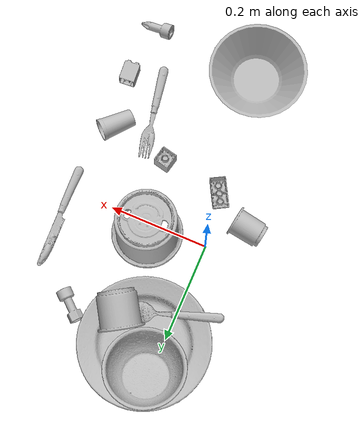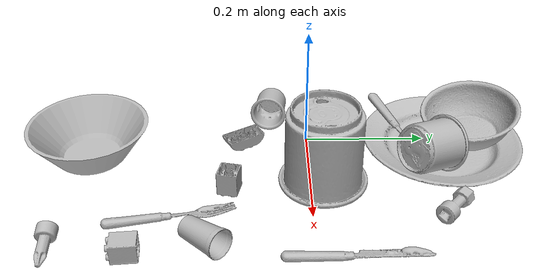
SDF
<sdf version="1.4">
  <world name="default">
    <light name="light1" type="point">
      <pose>0 0 1 0 0 0</pose>
      <diffuse>3 3 3 1</diffuse>
      <specular>3 3 3 1</specular>
    </light>
    <light name="light2" type="point">
      <pose>0 0.5 2 0 0 0</pose>
      <diffuse>1 1 1 1</diffuse>
      <specular>1 1 1 1</specular>
    </light>
    <light name="light3" type="point">
      <pose>0 0.5 2 0 0 0</pose>
      <diffuse>3 3 3 1</diffuse>
      <specular>3 3 3 1</specular>
    </light>
    <scene>
      <ambient>0.7 0.7 0.7</ambient>
    </scene>
    <model name="plate1">
      <link name="link_plate1">
        <collision name="default">
          <geometry>
            <mesh>
              <uri>model://plate/collision_meshes/collision.obj</uri>
              <scale>1.0 1.0 1.0</scale>
            </mesh>
          </geometry>
          <surface>
            <friction>
              <ode>
                <mu>0.5</mu>
                <mu2>0.5</mu2>
              </ode>
            </friction>
          <contact>
        <ode>
            <max_vel>0</max_vel>
            <min_depth>0.0001</min_depth>
            <kp>1e8</kp>
        </ode>
    </contact></surface>
        </collision>
        <visual name="default">
          <geometry>
            <mesh>
              <uri>model://plate/visual_meshes/visual.dae</uri>
              <scale>1.0 1.0 1.0</scale>
            </mesh>
          </geometry>
        </visual>
        <inertial>
          <mass>0.188415065407753</mass>
          <pose>-0.0006044681649655104 0.0002782578521873802 -0.0010561991948634386 0.0022187970116661695 -0.0032254679619122127 0.4526056514331616</pose>
          <inertia>
            <ixx>0.00088140933</ixx>
            <iyy>0.000872979</iyy>
            <izz>0.0017239053</izz>
            <ixy>0</ixy>
            <ixz>0</ixz>
            <iyz>0</iyz>
          </inertia>
        </inertial>
      </link>
      <pose>0.03316532075405121 0.22391515970230103 0.013733046129345894 -2.2163841717539391e-07 5.402633760236031e-07 2.596561843808585</pose>
    </model>
    <model name="cup1">
      <link name="link_cup1">
        <collision name="default">
          <geometry>
            <mesh>
              <uri>model://d_cups/collision_meshes/collision.obj</uri>
              <scale>2.0 2.0 2.0</scale>
            </mesh>
          </geometry>
          <surface>
            <friction>
              <ode>
                <mu>0.5</mu>
                <mu2>0.5</mu2>
              </ode>
            </friction>
          <contact>
        <ode>
            <max_vel>0</max_vel>
            <min_depth>0.0001</min_depth>
            <kp>1e8</kp>
        </ode>
    </contact></surface>
        </collision>
        <visual name="default">
          <geometry>
            <mesh>
              <uri>model://d_cups/visual_meshes/visual.dae</uri>
              <scale>2.0 2.0 2.0</scale>
            </mesh>
          </geometry>
        </visual>
        <inertial>
          <mass>0.39843064546585083</mass>
          <pose>0.0016136104241013527 0.0038234808016568422 -0.004533304367214441 0.24012134810188138 -0.24709791903716813 0.5942561701250738</pose>
          <inertia>
            <ixx>0.0013343208</ixx>
            <iyy>0.001330459</iyy>
            <izz>0.001207787</izz>
            <ixy>0</ixy>
            <ixz>0</ixz>
            <iyz>0</iyz>
          </inertia>
        </inertial>
      </link>
      <pose>0.11561080068349838 0.020509809255599976 0.06897805631160736 -3.1415925590456815 6.637596705661617e-08 0.6787491582233266</pose>
    </model>
    <model name="silverware1">
      <link name="link_silverware1">
        <collision name="default">
          <geometry>
            <mesh>
              <uri>model://knife/collision_meshes/collision.obj</uri>
              <scale>1.0 1.0 1.0</scale>
            </mesh>
          </geometry>
          <surface>
            <friction>
              <ode>
                <mu>0.5</mu>
                <mu2>0.5</mu2>
              </ode>
            </friction>
          <contact>
        <ode>
            <max_vel>0</max_vel>
            <min_depth>0.0001</min_depth>
            <kp>1e8</kp>
        </ode>
    </contact></surface>
        </collision>
        <visual name="default">
          <geometry>
            <mesh>
              <uri>model://knife/visual_meshes/visual.dae</uri>
              <scale>1.0 1.0 1.0</scale>
            </mesh>
          </geometry>
        </visual>
        <inertial>
          <mass>0.027211036533117294</mass>
          <pose>-0.02378525771200657 0.0015275125624611974 5.062023410573602e-05 0.0730549860308878 0.01724841828598218 -0.007409817457274567</pose>
          <inertia>
            <ixx>7.723595e-07</ixx>
            <iyy>0.000104540384</iyy>
            <izz>0.00010478913</izz>
            <ixy>0</ixy>
            <ixz>0</ixz>
            <iyz>0</iyz>
          </inertia>
        </inertial>
      </link>
      <pose>0.28620660305023193 0.05665603652596474 0.005810764618217945 2.889376867596072 0.025915034935976952 1.6049534422735658</pose>
    </model>
    <model name="silverware2">
      <link name="link_silverware2">
        <collision name="default">
          <geometry>
            <mesh>
              <uri>model://fork/collision_meshes/collision.obj</uri>
              <scale>1.0 1.0 1.0</scale>
            </mesh>
          </geometry>
          <surface>
            <friction>
              <ode>
                <mu>0.5</mu>
                <mu2>0.5</mu2>
              </ode>
            </friction>
          <contact>
        <ode>
            <max_vel>0</max_vel>
            <min_depth>0.0001</min_depth>
            <kp>1e8</kp>
        </ode>
    </contact></surface>
        </collision>
        <visual name="default">
          <geometry>
            <mesh>
              <uri>model://fork/visual_meshes/visual.dae</uri>
              <scale>1.0 1.0 1.0</scale>
            </mesh>
          </geometry>
        </visual>
        <inertial>
          <mass>0.01567319966852665</mass>
          <pose>-0.029570044949650764 0.00046588233090005815 0.0003218860656488687 -0.013551693849150472 -0.010977837004960822 0.014453899894816049</pose>
          <inertia>
            <ixx>5.494343e-07</ixx>
            <iyy>4.0918225e-05</iyy>
            <izz>4.1163967e-05</izz>
            <ixy>0</ixy>
            <ixz>0</ixz>
            <iyz>0</iyz>
          </inertia>
        </inertial>
      </link>
      <pose>0.2026917040348053 -0.21249450743198395 0.0057052066549658775 -0.181003429172367 0.02487835610989549 1.7507981256375036</pose>
    </model>
    <model name="silverware3">
      <link name="link_silverware3">
        <collision name="default">
          <geometry>
            <mesh>
              <uri>model://spoon/collision_meshes/collision.obj</uri>
              <scale>1.0 1.0 1.0</scale>
            </mesh>
          </geometry>
          <surface>
            <friction>
              <ode>
                <mu>0.5</mu>
                <mu2>0.5</mu2>
              </ode>
            </friction>
          <contact>
        <ode>
            <max_vel>0</max_vel>
            <min_depth>0.0001</min_depth>
            <kp>1e8</kp>
        </ode>
    </contact></surface>
        </collision>
        <visual name="default">
          <geometry>
            <mesh>
              <uri>model://spoon/visual_meshes/visual.dae</uri>
              <scale>1.0 1.0 1.0</scale>
            </mesh>
          </geometry>
        </visual>
        <inertial>
          <mass>0.020675545558333397</mass>
          <pose>-0.0055263228714466095 -0.001603417913429439 -0.0007271659560501575 0.03521671071703309 -0.03906584129558259 0.006150610048623938</pose>
          <inertia>
            <ixx>1.1500075e-06</ixx>
            <iyy>7.866978e-05</iyy>
            <izz>7.923691e-05</izz>
            <ixy>0</ixy>
            <ixz>0</ixz>
            <iyz>0</iyz>
          </inertia>
        </inertial>
      </link>
      <pose>0.004422695375978947 0.15037107467651367 0.026578985154628754 2.895896132884401 0.0656006526198338 0.320861548509891</pose>
    </model>
    <model name="cup3">
      <link name="link_cup3">
        <collision name="default">
          <geometry>
            <mesh>
              <uri>model://h_cups/collision_meshes/collision.obj</uri>
              <scale>1.0 1.0 1.0</scale>
            </mesh>
          </geometry>
          <surface>
            <friction>
              <ode>
                <mu>0.5</mu>
                <mu2>0.5</mu2>
              </ode>
            </friction>
          <contact>
        <ode>
            <max_vel>0</max_vel>
            <min_depth>0.0001</min_depth>
            <kp>1e8</kp>
        </ode>
    </contact></surface>
        </collision>
        <visual name="default">
          <geometry>
            <mesh>
              <uri>model://h_cups/visual_meshes/visual.dae</uri>
              <scale>1.0 1.0 1.0</scale>
            </mesh>
          </geometry>
        </visual>
        <inertial>
          <mass>0.08491484075784683</mass>
          <pose>-2.702520214370452e-05 0.00023018663341645151 -0.0018405397422611713 -0.02436220805872295 0.06545280106490914 0.1288526015338695</pose>
          <inertia>
            <ixx>0.000109663546</ixx>
            <iyy>0.00010835491</iyy>
            <izz>0.00011500697</izz>
            <ixy>0</ixy>
            <ixz>0</ixz>
            <iyz>0</iyz>
          </inertia>
        </inertial>
      </link>
      <pose>0.10118497163057327 0.18737046420574188 0.05518422648310661 -1.7703364490783107 0.23988627360877005 0.5152949947087021</pose>
    </model>
    <model name="cup4">
      <link name="link_cup4">
        <collision name="default">
          <geometry>
            <mesh>
              <uri>model://cup_small/collision_meshes/collision.obj</uri>
              <scale>1.0 1.0 1.0</scale>
            </mesh>
          </geometry>
          <surface>
            <friction>
              <ode>
                <mu>0.5</mu>
                <mu2>0.5</mu2>
              </ode>
            </friction>
          <contact>
        <ode>
            <max_vel>0</max_vel>
            <min_depth>0.0001</min_depth>
            <kp>1e8</kp>
        </ode>
    </contact></surface>
        </collision>
        <visual name="default">
          <geometry>
            <mesh>
              <uri>model://cup_small/visual_meshes/visual.dae</uri>
              <scale>1.0 1.0 1.0</scale>
            </mesh>
          </geometry>
        </visual>
        <inertial>
          <mass>0.024220753461122513</mass>
          <pose>0.00010482438665349036 -0.00033778438228182495 -0.010742821730673313 -0.011493274197159384 -0.01528013747447056 -0.5058088438882253</pose>
          <inertia>
            <ixx>1.4260815e-05</ixx>
            <iyy>1.433438e-05</iyy>
            <izz>6.4388e-06</izz>
            <ixy>0</ixy>
            <ixz>0</ixz>
            <iyz>0</iyz>
          </inertia>
        </inertial>
      </link>
      <pose>0.259644478559494 -0.15770664811134338 0.02027534507215023 1.3377387972092767 -1.2101400865266616 2.6359573003930583</pose>
    </model>
    <model name="cup5">
      <link name="link_cup5">
        <collision name="default">
          <geometry>
            <mesh>
              <uri>model://b_cups/collision_meshes/collision.obj</uri>
              <scale>1.0 1.0 1.0</scale>
            </mesh>
          </geometry>
          <surface>
            <friction>
              <ode>
                <mu>0.5</mu>
                <mu2>0.5</mu2>
              </ode>
            </friction>
          <contact>
        <ode>
            <max_vel>0</max_vel>
            <min_depth>0.0001</min_depth>
            <kp>1e8</kp>
        </ode>
    </contact></surface>
        </collision>
        <visual name="default">
          <geometry>
            <mesh>
              <uri>model://b_cups/visual_meshes/visual.dae</uri>
              <scale>1.0 1.0 1.0</scale>
            </mesh>
          </geometry>
        </visual>
        <inertial>
          <mass>0.049698356539011</mass>
          <pose>0.0005182003951631486 0.0018058595014736056 -0.0013381819007918239 0.1135633586286738 0.03872473724046268 -0.3456911343663658</pose>
          <inertia>
            <ixx>3.2531058e-05</ixx>
            <iyy>3.1913434e-05</iyy>
            <izz>2.7374275e-05</izz>
            <ixy>0</ixy>
            <ixz>0</ixz>
            <iyz>0</iyz>
          </inertia>
        </inertial>
      </link>
      <pose>-0.06473850458860397 -0.060923296958208084 0.02785702422261238 -1.472801244010081 0.34345279212731583 -1.6768744169561516</pose>
    </model>
    <model name="bowl1">
      <link name="link_bowl1">
        <collision name="default">
          <geometry>
            <mesh>
              <uri>model://bowl/collision_meshes/collision.obj</uri>
              <scale>1.0 1.0 1.0</scale>
            </mesh>
          </geometry>
          <surface>
            <friction>
              <ode>
                <mu>0.5</mu>
                <mu2>0.5</mu2>
              </ode>
            </friction>
          <contact>
        <ode>
            <max_vel>0</max_vel>
            <min_depth>0.0001</min_depth>
            <kp>1e8</kp>
        </ode>
    </contact></surface>
        </collision>
        <visual name="default">
          <geometry>
            <mesh>
              <uri>model://bowl/visual_meshes/visual.dae</uri>
              <scale>1.0 1.0 1.0</scale>
            </mesh>
          </geometry>
        </visual>
        <inertial>
          <mass>0.10713337361812592</mass>
          <pose>0.00020444899564608932 -0.001030207029543817 -0.0008042642148211598 -0.015763984617069283 0.014546905390658569 0.7140476331316008</pose>
          <inertia>
            <ixx>0.0002460938</ixx>
            <iyy>0.00024059511</iyy>
            <izz>0.00041401442</izz>
            <ixy>0</ixy>
            <ixz>0</ixz>
            <iyz>0</iyz>
          </inertia>
        </inertial>
      </link>
      <pose>0.008247415535151958 0.27489498257637024 0.03981954604387283 0.1869426675835413 -0.029351344775495832 0.6944197791423335</pose>
    </model>
    <model name="bowl2">
      <link name="link_bowl2">
        <collision name="default">
          <geometry>
            <mesh>
              <uri>model://bowl_a/collision_meshes/collision.obj</uri>
              <scale>1.0 1.0 1.0</scale>
            </mesh>
          </geometry>
          <surface>
            <friction>
              <ode>
                <mu>0.5</mu>
                <mu2>0.5</mu2>
              </ode>
            </friction>
          <contact>
        <ode>
            <max_vel>0</max_vel>
            <min_depth>0.0001</min_depth>
            <kp>1e8</kp>
        </ode>
    </contact></surface>
        </collision>
        <visual name="default">
          <geometry>
            <mesh>
              <uri>model://bowl_a/visual_meshes/visual.dae</uri>
              <scale>1.0 1.0 1.0</scale>
            </mesh>
          </geometry>
        </visual>
        <inertial>
          <mass>0.5226007103919983</mass>
          <pose>0.00027867400785908103 4.731409717351198e-05 -0.0013765293406322598 -0.0009805372975616423 -0.0010938241101444716 -0.19123543414166835</pose>
          <inertia>
            <ixx>0.0014878683</ixx>
            <iyy>0.0014970028</iyy>
            <izz>0.0026462309</izz>
            <ixy>0</ixy>
            <ixz>0</ixz>
            <iyz>0</iyz>
          </inertia>
        </inertial>
      </link>
      <pose>0.03878055512905121 -0.358511745929718 0.030382998287677765 -1.5665981088546988e-08 1.2684586710627944e-08 -0.09923578407123486</pose>
    </model>
    <model name="toy1">
      <link name="link_toy1">
        <collision name="default">
          <geometry>
            <mesh>
              <uri>model://f_lego_duplo/collision_meshes/collision.obj</uri>
              <scale>1.0 1.0 1.0</scale>
            </mesh>
          </geometry>
          <surface>
            <friction>
              <ode>
                <mu>0.5</mu>
                <mu2>0.5</mu2>
              </ode>
            </friction>
          <contact>
        <ode>
            <max_vel>0</max_vel>
            <min_depth>0.0001</min_depth>
            <kp>1e8</kp>
        </ode>
    </contact></surface>
        </collision>
        <visual name="default">
          <geometry>
            <mesh>
              <uri>model://f_lego_duplo/visual_meshes/visual.dae</uri>
              <scale>1.0 1.0 1.0</scale>
            </mesh>
          </geometry>
        </visual>
        <inertial>
          <mass>0.04674473777413368</mass>
          <pose>2.3694283299846575e-05 0.00013393160770647228 0.0018837876850739121 0.029838743240884653 -0.014424615896258132 -0.6756775311218791</pose>
          <inertia>
            <ixx>9.877422e-06</ixx>
            <iyy>9.965418e-06</iyy>
            <izz>8.57402e-06</izz>
            <ixy>0</ixy>
            <ixz>0</ixz>
            <iyz>0</iyz>
          </inertia>
        </inertial>
      </link>
      <pose>0.13984231650829315 -0.126267671585083 0.02186906710267067 3.1414120743268965 -4.873068655360444e-06 2.92158980155015</pose>
    </model>
    <model name="toy2">
      <link name="link_toy2">
        <collision name="default">
          <geometry>
            <mesh>
              <uri>model://b_lego_duplo/collision_meshes/collision.obj</uri>
              <scale>1.0 1.0 1.0</scale>
            </mesh>
          </geometry>
          <surface>
            <friction>
              <ode>
                <mu>0.5</mu>
                <mu2>0.5</mu2>
              </ode>
            </friction>
          <contact>
        <ode>
            <max_vel>0</max_vel>
            <min_depth>0.0001</min_depth>
            <kp>1e8</kp>
        </ode>
    </contact></surface>
        </collision>
        <visual name="default">
          <geometry>
            <mesh>
              <uri>model://b_lego_duplo/visual_meshes/visual.dae</uri>
              <scale>1.0 1.0 1.0</scale>
            </mesh>
          </geometry>
        </visual>
        <inertial>
          <mass>0.046308279037475586</mass>
          <pose>-0.00011053026537410915 -9.152292477665469e-06 0.001929429010488093 -0.03749474318211287 -0.02635425030857695 0.451892682452606</pose>
          <inertia>
            <ixx>9.477338e-06</ixx>
            <iyy>9.541048e-06</iyy>
            <izz>8.443999e-06</izz>
            <ixy>0</ixy>
            <ixz>0</ixz>
            <iyz>0</iyz>
          </inertia>
        </inertial>
      </link>
      <pose>0.27852770686149597 -0.26763349771499634 0.01612118072807789 1.5723700668426248 -0.012009813441858476 0.08051771776152787</pose>
    </model>
    <model name="toy3">
      <link name="link_toy3">
        <collision name="default">
          <geometry>
            <mesh>
              <uri>model://c_toy_airplane/collision_meshes/collision.obj</uri>
              <scale>1.0 1.0 1.0</scale>
            </mesh>
          </geometry>
          <surface>
            <friction>
              <ode>
                <mu>0.5</mu>
                <mu2>0.5</mu2>
              </ode>
            </friction>
          <contact>
        <ode>
            <max_vel>0</max_vel>
            <min_depth>0.0001</min_depth>
            <kp>1e8</kp>
        </ode>
    </contact></surface>
        </collision>
        <visual name="default">
          <geometry>
            <mesh>
              <uri>model://c_toy_airplane/visual_meshes/visual.dae</uri>
              <scale>1.0 1.0 1.0</scale>
            </mesh>
          </geometry>
        </visual>
        <inertial>
          <mass>0.03609102964401245</mass>
          <pose>-0.00023024271649774164 -4.429565194641327e-07 -0.006080531980842352 -0.006192551548155338 -0.01679780015794874 0.7654806130326979</pose>
          <inertia>
            <ixx>1.6572261e-05</ixx>
            <iyy>1.6525488e-05</iyy>
            <izz>3.890839e-06</izz>
            <ixy>0</ixy>
            <ixz>0</ixz>
            <iyz>0</iyz>
          </inertia>
        </inertial>
      </link>
      <pose>0.19480346143245697 0.21188026666641235 0.015085714869201183 -1.5985487089947588 -0.5751548977667538 0.8537399877968951</pose>
    </model>
    <model name="toy4">
      <link name="link_toy4">
        <collision name="default">
          <geometry>
            <mesh>
              <uri>model://d_toy_airplane/collision_meshes/collision.obj</uri>
              <scale>1.0 1.0 1.0</scale>
            </mesh>
          </geometry>
          <surface>
            <friction>
              <ode>
                <mu>0.5</mu>
                <mu2>0.5</mu2>
              </ode>
            </friction>
          <contact>
        <ode>
            <max_vel>0</max_vel>
            <min_depth>0.0001</min_depth>
            <kp>1e8</kp>
        </ode>
    </contact></surface>
        </collision>
        <visual name="default">
          <geometry>
            <mesh>
              <uri>model://d_toy_airplane/visual_meshes/visual.dae</uri>
              <scale>1.0 1.0 1.0</scale>
            </mesh>
          </geometry>
        </visual>
        <inertial>
          <mass>0.017463792115449905</mass>
          <pose>9.410289203515276e-05 -5.80932101001963e-05 -0.011728095822036266 0.00026611357398368453 0.004679028940218743 0.5192826772494831</pose>
          <inertia>
            <ixx>5.2353053e-06</ixx>
            <iyy>5.239254e-06</iyy>
            <izz>1.5805728e-06</izz>
            <ixy>0</ixy>
            <ixz>0</ixz>
            <iyz>0</iyz>
          </inertia>
        </inertial>
      </link>
      <pose>0.2682473063468933 -0.37915724515914917 0.011834807693958282 1.9162757939284556 0.9460543793008699 1.856710620396373</pose>
    </model>
    <model name="toy5">
      <link name="link_toy5">
        <collision name="default">
          <geometry>
            <mesh>
              <uri>model://a_lego_duplo/collision_meshes/collision.obj</uri>
              <scale>1.0 1.0 1.0</scale>
            </mesh>
          </geometry>
          <surface>
            <friction>
              <ode>
                <mu>0.5</mu>
                <mu2>0.5</mu2>
              </ode>
            </friction>
          <contact>
        <ode>
            <max_vel>0</max_vel>
            <min_depth>0.0001</min_depth>
            <kp>1e8</kp>
        </ode>
    </contact></surface>
        </collision>
        <visual name="default">
          <geometry>
            <mesh>
              <uri>model://a_lego_duplo/visual_meshes/visual.dae</uri>
              <scale>1.0 1.0 1.0</scale>
            </mesh>
          </geometry>
        </visual>
        <inertial>
          <mass>0.016317613422870636</mass>
          <pose>-0.00011337783507769927 0.00018517576972953975 0.00036926058237440884 -0.01411698761390393 -0.0001256633936569927 6.142942133676727e-05</pose>
          <inertia>
            <ixx>2.0920475e-06</ixx>
            <iyy>4.6866458e-06</iyy>
            <izz>5.8054516e-06</izz>
            <ixy>0</ixy>
            <ixz>0</ixz>
            <iyz>0</iyz>
          </inertia>
        </inertial>
      </link>
      <pose>0.015523125417530537 -0.10669758915901184 0.012124774977564812 -3.1414153050543554 -0.015501231765225174 2.0741770376462387</pose>
    </model>
  <physics type="ode">
      <max_contacts>50</max_contacts>
      <ode>
        <solver>
          <type>quick</type>
          <iters>75</iters>
        </solver>
        <constraints>
          <contact_max_correcting_vel>0</contact_max_correcting_vel>
          <contact_surface_layer>0</contact_surface_layer>
        </constraints>
      </ode>
    </physics></world>
</sdf>
